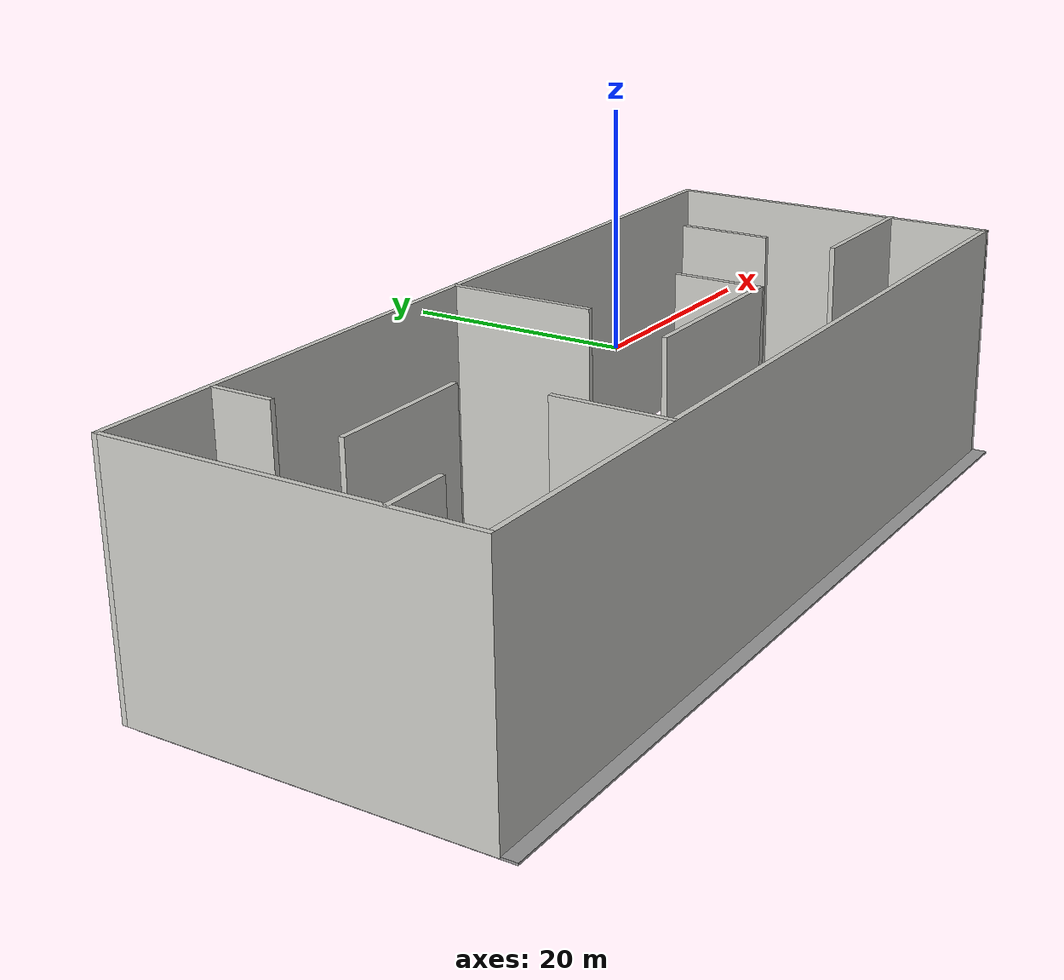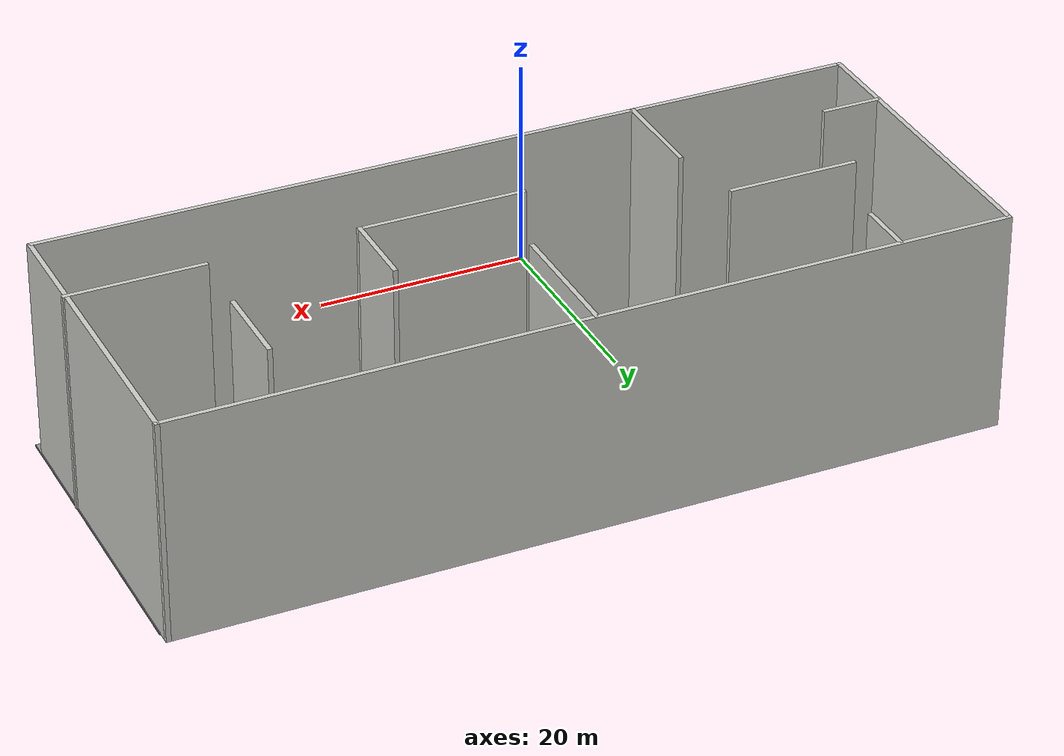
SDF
<sdf version="1.4">
 <world name="oceans_waves">
  <physics name="default_physics" default="true" type="ode">
   <max_step_size>0.002</max_step_size>
   <real_time_factor>1</real_time_factor>
   <real_time_update_rate>500</real_time_update_rate>
  </physics>
  <scene>
   <ambient>0.01 0.01 0.01 1.0</ambient>
   <sky><clouds><speed>12</speed></clouds></sky>
   <shadows>1</shadows>
   <fog>
    <color>0.2 0.3 0.8 1.0</color>
    <type>linear</type>
    <density>1.0</density>
    <start>1</start>
    <end>40</end>
   </fog>
  </scene>
  <spherical_coordinates>
   <latitude_deg>56.71897669633431</latitude_deg>
   <longitude_deg>3.515625</longitude_deg>
  </spherical_coordinates>
  <light type="directional" name="sun_diffuse_1">
   <pose>-200 -200 100 0 0 0</pose>
   <diffuse>0.2 0.3 0.8 1.0</diffuse>
   <specular>0 0 0 1</specular>
   <direction>-0.3 -0.3 -1</direction>
  </light>
  <light type="directional" name="sun_diffuse_2">
   <pose>-100 50 200 0 0 0</pose>
   <diffuse>0.2 0.3 0.8 1.0</diffuse>
   <specular>0 0 0 1</specular>
   <direction>-0.3 -0.3 -1</direction>
  </light>
  <light type="directional" name="sun_diffuse_3">
   <pose>-150 -130 50 0 0 0</pose>
   <diffuse>0.2 0.3 0.8 1.0</diffuse>
   <specular>0.2 0.3 0.8 1.0</specular>
   <direction>0.5 0.5 -1</direction>
  </light>
  <include><uri>model://Untitled</uri><pose>0 0 -10.0 0 0 0</pose><name>wall</name></include>
  <include><uri>model://grey_wall_s4</uri><pose>0 0 -20.0 1.57079632679 0 0</pose><name>floor</name></include>
  <plugin name="underwater_current_plugin" filename="libuuv_underwater_current_ros_plugin.so">
   <namespace>hydrodynamics</namespace>
   <constant_current>
    <topic>current_velocity</topic>
    <velocity><mean>0</mean><min>0</min><max>5</max><mu>0.0</mu><noiseAmp>0.0</noiseAmp></velocity>
    <horizontal_angle>
     <mean>0</mean>
     <min>-3.141592653589793238</min>
     <max>3.141592653589793238</max>
     <mu>0.0</mu>
     <noiseAmp>0.0</noiseAmp>
    </horizontal_angle>
    <vertical_angle>
     <mean>0</mean>
     <min>-3.141592653589793238</min>
     <max>3.141592653589793238</max>
     <mu>0.0</mu>
     <noiseAmp>0.0</noiseAmp>
    </vertical_angle>
   </constant_current>
  </plugin>
  <plugin name="sc_interface" filename="libuuv_sc_ros_interface_plugin.so"/>
 </world>
</sdf>

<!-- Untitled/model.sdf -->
<sdf version='1.6'>
  <model name='Untitled'>
    <pose frame=''>6.80705 -6.171 0 0 -0 0</pose>
    <link name='Wall_0'>
      <collision name='Wall_0_Collision'>
        <geometry>
          <box>
            <size>33.5996 0.5 23</size>
          </box>
        </geometry>
        <pose frame=''>0 0 1.5 0 -0 0</pose>
      </collision>
      <visual name='Wall_0_Visual'>
        <pose frame=''>0 0 1.5 0 -0 0</pose>
        <geometry>
          <box>
            <size>33.5996 0.5 23</size>
          </box>
        </geometry>
        <material>
          <script>
            <uri>file://media/materials/scripts/gazebo.material</uri>
            <name>Gazebo/CeilingTiled</name>
          </script>
          <ambient>1 1 1 1</ambient>
        </material>
        <meta>
          <layer>0</layer>
        </meta>
      </visual>
      <pose frame=''>-42.2571 -0 0 0 -0 -1.5708</pose>
    </link>
    <link name='Wall_1'>
      <collision name='Wall_1_Collision'>
        <geometry>
          <box>
            <size>84.85 0.5 23</size>
          </box>
        </geometry>
        <pose frame=''>0 0 1.5 0 -0 0</pose>
      </collision>
      <visual name='Wall_1_Visual'>
        <pose frame=''>0 0 1.5 0 -0 0</pose>
        <geometry>
          <box>
            <size>84.85 0.5 23</size>
          </box>
        </geometry>
        <material>
          <script>
            <uri>file://media/materials/scripts/gazebo.material</uri>
            <name>Gazebo/CeilingTiled</name>
          </script>
          <ambient>1 1 1 1</ambient>
        </material>
        <meta>
          <layer>0</layer>
        </meta>
      </visual>
      <pose frame=''>-0.082051 -16.55 0 0 -0 0</pose>
    </link>
    <link name='Wall_11'>
      <collision name='Wall_11_Collision'>
        <geometry>
          <box>
            <size>10.6002 0.5 23</size>
          </box>
        </geometry>
        <pose frame=''>0 0 1.5 0 -0 0</pose>
      </collision>
      <visual name='Wall_11_Visual'>
        <pose frame=''>0 0 1.5 0 -0 0</pose>
        <geometry>
          <box>
            <size>10.6002 0.5 23</size>
          </box>
        </geometry>
        <material>
          <script>
            <uri>file://media/materials/scripts/gazebo.material</uri>
            <name>Gazebo/CeilingTiled</name>
          </script>
          <ambient>1 1 1 1</ambient>
        </material>
        <meta>
          <layer>0</layer>
        </meta>
      </visual>
      <pose frame=''>-19.5401 -11.407 0 0 -0 1.5708</pose>
    </link>
    <link name='Wall_13'>
      <collision name='Wall_13_Collision'>
        <geometry>
          <box>
            <size>14.0995 0.5 23</size>
          </box>
        </geometry>
        <pose frame=''>0 0 1.5 0 -0 0</pose>
      </collision>
      <visual name='Wall_13_Visual'>
        <pose frame=''>0 0 1.5 0 -0 0</pose>
        <geometry>
          <box>
            <size>14.0995 0.5 23</size>
          </box>
        </geometry>
        <material>
          <script>
            <uri>file://media/materials/scripts/gazebo.material</uri>
            <name>Gazebo/CeilingTiled</name>
          </script>
          <ambient>1 1 1 1</ambient>
        </material>
        <meta>
          <layer>0</layer>
        </meta>
      </visual>
      <pose frame=''>0.160949 9.67 0 0 -0 -1.5708</pose>
    </link>
    <link name='Wall_15'>
      <collision name='Wall_15_Collision'>
        <geometry>
          <box>
            <size>17.1003 0.5 23</size>
          </box>
        </geometry>
        <pose frame=''>0 0 1.5 0 -0 0</pose>
      </collision>
      <visual name='Wall_15_Visual'>
        <pose frame=''>0 0 1.5 0 -0 0</pose>
        <geometry>
          <box>
            <size>17.1003 0.5 23</size>
          </box>
        </geometry>
        <material>
          <script>
            <uri>file://media/materials/scripts/gazebo.material</uri>
            <name>Gazebo/CeilingTiled</name>
          </script>
          <ambient>1 1 1 1</ambient>
        </material>
        <meta>
          <layer>0</layer>
        </meta>
      </visual>
      <pose frame=''>5.08295 -6.607 0 0 -0 0</pose>
    </link>
    <link name='Wall_17'>
      <collision name='Wall_17_Collision'>
        <geometry>
          <box>
            <size>8.6 0.5 23</size>
          </box>
        </geometry>
        <pose frame=''>0 0 1.5 0 -0 0</pose>
      </collision>
      <visual name='Wall_17_Visual'>
        <pose frame=''>0 0 1.5 0 -0 0</pose>
        <geometry>
          <box>
            <size>8.6 0.5 23</size>
          </box>
        </geometry>
        <material>
          <script>
            <uri>file://media/materials/scripts/gazebo.material</uri>
            <name>Gazebo/CeilingTiled</name>
          </script>
          <ambient>1 1 1 1</ambient>
        </material>
        <meta>
          <layer>0</layer>
        </meta>
      </visual>
      <pose frame=''>13.3829 -2.557 0 0 -0 1.5708</pose>
    </link>
    <link name='Wall_19'>
      <collision name='Wall_19_Collision'>
        <geometry>
          <box>
            <size>9.09977 0.5 23</size>
          </box>
        </geometry>
        <pose frame=''>0 0 1.5 0 -0 0</pose>
      </collision>
      <visual name='Wall_19_Visual'>
        <pose frame=''>0 0 1.5 0 -0 0</pose>
        <geometry>
          <box>
            <size>9.09977 0.5 23</size>
          </box>
        </geometry>
        <material>
          <script>
            <uri>file://media/materials/scripts/gazebo.material</uri>
            <name>Gazebo/CeilingTiled</name>
          </script>
          <ambient>1 1 1 1</ambient>
        </material>
        <meta>
          <layer>0</layer>
        </meta>
      </visual>
      <pose frame=''>28.7979 5.003 0 0 -0 -1.5708</pose>
    </link>
    <link name='Wall_2'>
      <collision name='Wall_2_Collision'>
        <geometry>
          <box>
            <size>33.6 0.5 23</size>
          </box>
        </geometry>
        <pose frame=''>0 0 1.5 0 -0 0</pose>
      </collision>
      <visual name='Wall_2_Visual'>
        <pose frame=''>0 0 1.5 0 -0 0</pose>
        <geometry>
          <box>
            <size>33.6 0.5 23</size>
          </box>
        </geometry>
        <material>
          <script>
            <uri>file://media/materials/scripts/gazebo.material</uri>
            <name>Gazebo/CeilingTiled</name>
          </script>
          <ambient>1 1 1 1</ambient>
        </material>
        <meta>
          <layer>0</layer>
        </meta>
      </visual>
      <pose frame=''>42.093 -0 0 0 -0 1.5708</pose>
    </link>
    <link name='Wall_21'>
      <collision name='Wall_21_Collision'>
        <geometry>
          <box>
            <size>14.1002 0.5 23</size>
          </box>
        </geometry>
        <pose frame=''>0 0 1.5 0 -0 0</pose>
      </collision>
      <visual name='Wall_21_Visual'>
        <pose frame=''>0 0 1.5 0 -0 0</pose>
        <geometry>
          <box>
            <size>14.1002 0.5 23</size>
          </box>
        </geometry>
        <material>
          <script>
            <uri>file://media/materials/scripts/gazebo.material</uri>
            <name>Gazebo/CeilingTiled</name>
          </script>
          <ambient>1 1 1 1</ambient>
        </material>
        <meta>
          <layer>0</layer>
        </meta>
      </visual>
      <pose frame=''>35.4569 -6.598 0 0 -0 0</pose>
    </link>
    <link name='Wall_3'>
      <collision name='Wall_3_Collision'>
        <geometry>
          <box>
            <size>84.85 0.5 23</size>
          </box>
        </geometry>
        <pose frame=''>0 0 1.5 0 -0 0</pose>
      </collision>
      <visual name='Wall_3_Visual'>
        <pose frame=''>0 0 1.5 0 -0 0</pose>
        <geometry>
          <box>
            <size>84.85 0.5 23</size>
          </box>
        </geometry>
        <material>
          <script>
            <uri>file://media/materials/scripts/gazebo.material</uri>
            <name>Gazebo/CeilingTiled</name>
          </script>
          <ambient>1 1 1 1</ambient>
        </material>
        <meta>
          <layer>0</layer>
        </meta>
      </visual>
      <pose frame=''>-0.082051 16.55 0 0 -0 3.14159</pose>
    </link>
    <link name='Wall_5'>
      <collision name='Wall_5_Collision'>
        <geometry>
          <box>
            <size>6.10023 0.5 23</size>
          </box>
        </geometry>
        <pose frame=''>0 0 1.5 0 -0 0</pose>
      </collision>
      <visual name='Wall_5_Visual'>
        <pose frame=''>0 0 1.5 0 -0 0</pose>
        <geometry>
          <box>
            <size>6.10023 0.5 23</size>
          </box>
        </geometry>
        <material>
          <script>
            <uri>file://media/materials/scripts/gazebo.material</uri>
            <name>Gazebo/CeilingTiled</name>
          </script>
          <ambient>1 1 1 1</ambient>
        </material>
        <meta>
          <layer>0</layer>
        </meta>
      </visual>
      <pose frame=''>-30.8361 13.649 0 0 -0 -1.5708</pose>
    </link>
    <link name='Wall_7'>
      <collision name='Wall_7_Collision'>
        <geometry>
          <box>
            <size>13.3497 0.5 23</size>
          </box>
        </geometry>
        <pose frame=''>0 0 1.5 0 -0 0</pose>
      </collision>
      <visual name='Wall_7_Visual'>
        <pose frame=''>0 0 1.5 0 -0 0</pose>
        <geometry>
          <box>
            <size>13.3497 0.5 23</size>
          </box>
        </geometry>
        <material>
          <script>
            <uri>file://media/materials/scripts/gazebo.material</uri>
            <name>Gazebo/CeilingTiled</name>
          </script>
          <ambient>1 1 1 1</ambient>
        </material>
        <meta>
          <layer>0</layer>
        </meta>
      </visual>
      <pose frame=''>-27.6081 1.414 0 0 -0 0</pose>
    </link>
    <link name='Wall_9'>
      <collision name='Wall_9_Collision'>
        <geometry>
          <box>
            <size>6.09999 0.5 23</size>
          </box>
        </geometry>
        <pose frame=''>0 0 1.5 0 -0 0</pose>
      </collision>
      <visual name='Wall_9_Visual'>
        <pose frame=''>0 0 1.5 0 -0 0</pose>
        <geometry>
          <box>
            <size>6.09999 0.5 23</size>
          </box>
        </geometry>
        <material>
          <script>
            <uri>file://media/materials/scripts/gazebo.material</uri>
            <name>Gazebo/CeilingTiled</name>
          </script>
          <ambient>1 1 1 1</ambient>
        </material>
        <meta>
          <layer>0</layer>
        </meta>
      </visual>
      <pose frame=''>-39.254 -8.577 0 0 -0 0</pose>
    </link>
    <static>1</static>
  </model>
</sdf>

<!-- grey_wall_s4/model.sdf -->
<sdf version="1.5">
  <model name="grey_wall">
    <static>true</static>
    <link name="link">
      <pose>0 0 1.4 0 0 0</pose>
      <collision name="collision">
        <geometry>
          <box>
            <size>84.85 0.2 33.6</size>
          </box>
        </geometry>
      </collision>
      <visual name="visual">
        <cast_shadows>false</cast_shadows>
        <geometry>
          <box>
            <size>84.85 0.2 33.6</size>
          </box>
        </geometry>
        <material>
          <script>
            <uri>model://grey_wall/materials/scripts</uri>
            <uri>model://grey_wall/materials/textures</uri>
            <name>vrc/grey_wall</name>
          </script>
        </material>
      </visual>
    </link>
  </model>
</sdf>
